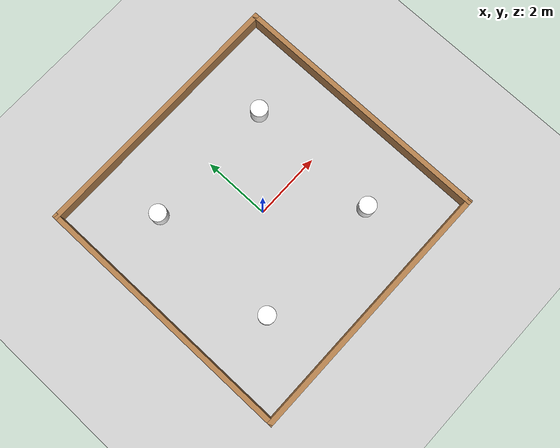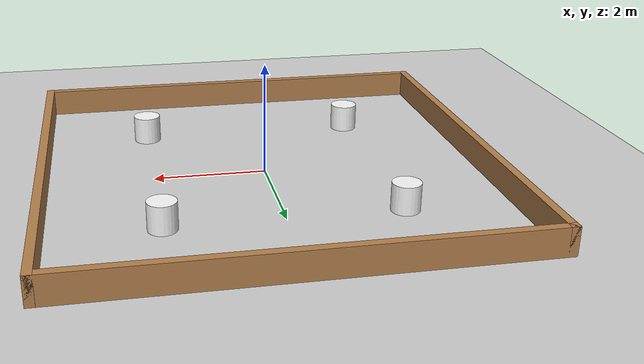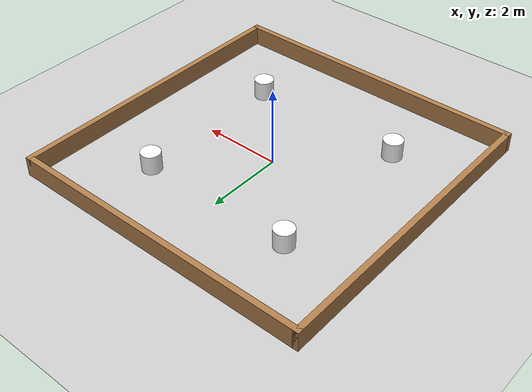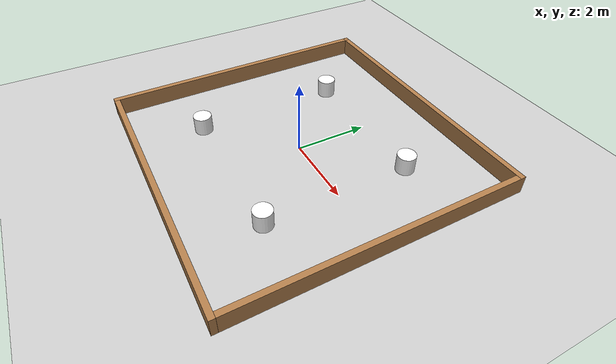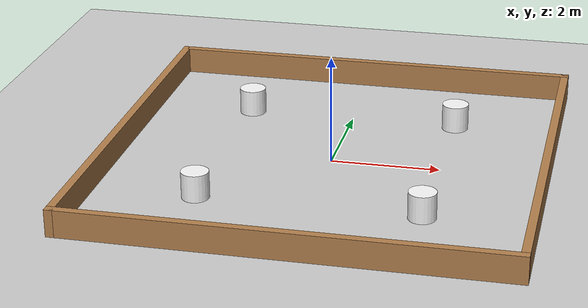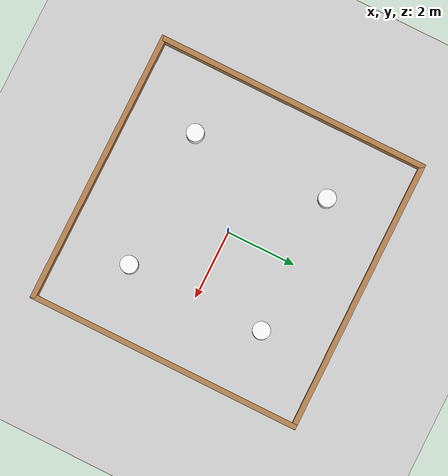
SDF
<sdf version="1.7">
 <world name="default">
  <light name="sun" type="directional">
   <pose>0 0 10 0 -0 0</pose>
   <diffuse>0.8 0.8 0.8 1</diffuse>
   <specular>0.2 0.2 0.2 1</specular>
   <attenuation>
    <range>1000</range>
    <constant>0.9</constant>
    <linear>0.01</linear>
    <quadratic>0.001</quadratic>
   </attenuation>
   <direction>-0.5 0.1 -0.9</direction>
   <spot><inner_angle>0</inner_angle><outer_angle>0</outer_angle><falloff>0</falloff></spot>
  </light>
  <model name="ground_plane">
   <static>1</static>
   <link name="link">
    <collision name="collision">
     <geometry><plane><normal>0 0 1</normal><size>100 100</size></plane></geometry>
     <surface>
      <contact><collide_bitmask>65535</collide_bitmask></contact>
      <friction><ode><mu>100</mu><mu2>50</mu2></ode></friction>
     </surface>
    </collision>
    <visual name="visual">
     <cast_shadows>0</cast_shadows>
     <geometry><plane><normal>0 0 1</normal><size>100 100</size></plane></geometry>
     <material>
      <script><uri>file://media/materials/scripts/gazebo.material</uri><name>Gazebo/Grey</name></script>
     </material>
    </visual>
   </link>
  </model>
  <gravity>0 0 -9.8</gravity>
  <magnetic_field>6e-06 2.3e-05 -4.2e-05</magnetic_field>
  <atmosphere type="adiabatic"/>
  <physics type="ode">
   <max_step_size>0.001</max_step_size>
   <real_time_factor>1</real_time_factor>
   <real_time_update_rate>1000</real_time_update_rate>
  </physics>
  <scene><ambient>0.4 0.4 0.4 1</ambient><background>0.7 0.7 0.7 1</background><shadows>1</shadows></scene>
  <audio><device>default</device></audio>
  <spherical_coordinates>
   <surface_model>EARTH_WGS84</surface_model>
   <latitude_deg>0</latitude_deg>
   <longitude_deg>0</longitude_deg>
   <elevation>0</elevation>
   <heading_deg>0</heading_deg>
  </spherical_coordinates>
  <model name="wall_8x8">
   <link name="Wall_0">
    <collision name="Wall_0_Collision">
     <geometry><box><size>8 0.15 0.5</size></box></geometry>
     <pose>0 0 0.25 0 -0 0</pose>
    </collision>
    <visual name="Wall_0_Visual">
     <pose>0 0 0.25 0 -0 0</pose>
     <geometry><box><size>8 0.15 0.5</size></box></geometry>
     <material>
      <script><uri>file://media/materials/scripts/gazebo.material</uri><name>Gazebo/Wood</name></script>
      <ambient>1 1 1 1</ambient>
     </material>
     <meta><layer>0</layer></meta>
    </visual>
    <pose>-3.925 -0 0 0 -0 1.5708</pose>
   </link>
   <link name="Wall_5">
    <collision name="Wall_5_Collision">
     <geometry><box><size>8 0.15 0.5</size></box></geometry>
     <pose>0 0 0.25 0 -0 0</pose>
    </collision>
    <visual name="Wall_5_Visual">
     <pose>0 0 0.25 0 -0 0</pose>
     <geometry><box><size>8 0.15 0.5</size></box></geometry>
     <material>
      <script><uri>file://media/materials/scripts/gazebo.material</uri><name>Gazebo/Wood</name></script>
      <ambient>1 1 1 1</ambient>
     </material>
     <meta><layer>0</layer></meta>
    </visual>
    <pose>-0 3.925 0 0 -0 0</pose>
   </link>
   <link name="Wall_6">
    <collision name="Wall_6_Collision">
     <geometry><box><size>8 0.15 0.5</size></box></geometry>
     <pose>0 0 0.25 0 -0 0</pose>
    </collision>
    <visual name="Wall_6_Visual">
     <pose>0 0 0.25 0 -0 0</pose>
     <geometry><box><size>8 0.15 0.5</size></box></geometry>
     <material>
      <script><uri>file://media/materials/scripts/gazebo.material</uri><name>Gazebo/Wood</name></script>
      <ambient>1 1 1 1</ambient>
     </material>
     <meta><layer>0</layer></meta>
    </visual>
    <pose>3.925 -0 0 0 -0 -1.5708</pose>
   </link>
   <link name="Wall_7">
    <collision name="Wall_7_Collision">
     <geometry><box><size>8 0.15 0.5</size></box></geometry>
     <pose>0 0 0.25 0 -0 0</pose>
    </collision>
    <visual name="Wall_7_Visual">
     <pose>0 0 0.25 0 -0 0</pose>
     <geometry><box><size>8 0.15 0.5</size></box></geometry>
     <material>
      <script><uri>file://media/materials/scripts/gazebo.material</uri><name>Gazebo/Wood</name></script>
      <ambient>1 1 1 1</ambient>
     </material>
     <meta><layer>0</layer></meta>
    </visual>
    <pose>-0 -3.925 0 0 -0 3.14159</pose>
   </link>
   <static>1</static>
  </model>
  <model name="moving_white_cylinder">
   <link name="link">
    <inertial>
     <mass>1</mass>
     <inertia><ixx>0.145833</ixx><ixy>0</ixy><ixz>0</ixz><iyy>0.145833</iyy><iyz>0</iyz><izz>0.125</izz></inertia>
    </inertial>
    <visual name="visual">
     <geometry><cylinder><radius>0.25</radius><length>0.5</length></cylinder></geometry>
     <material>
      <script><name>Gazebo/Pedestrian</name><uri>file://media/materials/scripts/gazebo.material</uri></script>
      <shader type="pixel"><normal_map>__default__</normal_map></shader>
      <ambient>0.98 0.98 0.98 1</ambient>
      <diffuse>0.976 0.976 0.976 1</diffuse>
      <specular>0.976 0.976 0.976 1</specular>
      <emissive>0.976 0.976 0.976 1</emissive>
     </material>
     <pose>0 0 -0.25 0 -0 0</pose>
    </visual>
    <collision name="collision">
     <pose>0 0 -0.25 0 -0 0</pose>
     <geometry><cylinder><radius>0.25</radius><length>0.5</length></cylinder></geometry>
     <surface>
      <friction>
       <ode><mu>1</mu><mu2>1</mu2><fdir1>0 0 0</fdir1><slip1>0</slip1><slip2>0</slip2></ode>
       <torsional>
        <coefficient>1</coefficient>
        <patch_radius>0</patch_radius>
        <surface_radius>0</surface_radius>
        <use_patch_radius>1</use_patch_radius>
        <ode><slip>0</slip></ode>
       </torsional>
      </friction>
      <bounce><restitution_coefficient>0</restitution_coefficient><threshold>1e+06</threshold></bounce>
      <contact>
       <collide_without_contact>0</collide_without_contact>
       <collide_without_contact_bitmask>1</collide_without_contact_bitmask>
       <collide_bitmask>1</collide_bitmask>
       <ode>
        <soft_cfm>0</soft_cfm>
        <soft_erp>0.2</soft_erp>
        <kp>1e+13</kp>
        <kd>1</kd>
        <max_vel>0.01</max_vel>
        <min_depth>0</min_depth>
       </ode>
       <bullet>
        <split_impulse>1</split_impulse>
        <split_impulse_penetration_threshold>-0.01</split_impulse_penetration_threshold>
        <soft_cfm>0</soft_cfm>
        <soft_erp>0.2</soft_erp>
        <kp>1e+13</kp>
        <kd>1</kd>
       </bullet>
      </contact>
     </surface>
    </collision>
   </link>
   <static>0</static>
   <pose>2 2 0.499992 1e-06 -1e-06 -1e-06</pose>
   <plugin name="dyn_obst_plugin" filename="libdyn_obst_plugin.so">
    <axis>x</axis>
    <angle>45.0</angle>
    <amplitude>1.6</amplitude>
    <frequency>0.5</frequency>
   </plugin>
  </model>
  <model name="moving_white_cylinder_0">
   <link name="link">
    <inertial>
     <mass>1</mass>
     <inertia><ixx>0.145833</ixx><ixy>0</ixy><ixz>0</ixz><iyy>0.145833</iyy><iyz>0</iyz><izz>0.125</izz></inertia>
    </inertial>
    <visual name="visual">
     <geometry><cylinder><radius>0.25</radius><length>0.5</length></cylinder></geometry>
     <material>
      <script><name>Gazebo/Pedestrian</name><uri>file://media/materials/scripts/gazebo.material</uri></script>
      <shader type="pixel"><normal_map>__default__</normal_map></shader>
      <ambient>0.98 0.98 0.98 1</ambient>
      <diffuse>0.976 0.976 0.976 1</diffuse>
      <specular>0.976 0.976 0.976 1</specular>
      <emissive>0.976 0.976 0.976 1</emissive>
     </material>
     <pose>0 0 -0.25 0 -0 0</pose>
    </visual>
    <collision name="collision">
     <pose>0 0 -0.25 0 -0 0</pose>
     <geometry><cylinder><radius>0.25</radius><length>0.5</length></cylinder></geometry>
     <surface>
      <friction>
       <ode><mu>1</mu><mu2>1</mu2><fdir1>0 0 0</fdir1><slip1>0</slip1><slip2>0</slip2></ode>
       <torsional>
        <coefficient>1</coefficient>
        <patch_radius>0</patch_radius>
        <surface_radius>0</surface_radius>
        <use_patch_radius>1</use_patch_radius>
        <ode><slip>0</slip></ode>
       </torsional>
      </friction>
      <bounce><restitution_coefficient>0</restitution_coefficient><threshold>1e+06</threshold></bounce>
      <contact>
       <collide_without_contact>0</collide_without_contact>
       <collide_without_contact_bitmask>1</collide_without_contact_bitmask>
       <collide_bitmask>1</collide_bitmask>
       <ode>
        <soft_cfm>0</soft_cfm>
        <soft_erp>0.2</soft_erp>
        <kp>1e+13</kp>
        <kd>1</kd>
        <max_vel>0.01</max_vel>
        <min_depth>0</min_depth>
       </ode>
       <bullet>
        <split_impulse>1</split_impulse>
        <split_impulse_penetration_threshold>-0.01</split_impulse_penetration_threshold>
        <soft_cfm>0</soft_cfm>
        <soft_erp>0.2</soft_erp>
        <kp>1e+13</kp>
        <kd>1</kd>
       </bullet>
      </contact>
     </surface>
    </collision>
   </link>
   <static>0</static>
   <pose>-2 2 0.499998 -1e-06 1e-06 -1e-06</pose>
   <plugin name="dyn_obst_plugin" filename="libdyn_obst_plugin.so">
    <axis>y</axis>
    <amplitude>1.6</amplitude>
    <frequency>-0.5</frequency>
   </plugin>
  </model>
  <model name="moving_white_cylinder_1">
   <link name="link">
    <inertial>
     <mass>1</mass>
     <inertia><ixx>0.145833</ixx><ixy>0</ixy><ixz>0</ixz><iyy>0.145833</iyy><iyz>0</iyz><izz>0.125</izz></inertia>
    </inertial>
    <visual name="visual">
     <geometry><cylinder><radius>0.25</radius><length>0.5</length></cylinder></geometry>
     <material>
      <script><name>Gazebo/Pedestrian</name><uri>file://media/materials/scripts/gazebo.material</uri></script>
      <shader type="pixel"><normal_map>__default__</normal_map></shader>
      <ambient>0.98 0.98 0.98 1</ambient>
      <diffuse>0.976 0.976 0.976 1</diffuse>
      <specular>0.976 0.976 0.976 1</specular>
      <emissive>0.976 0.976 0.976 1</emissive>
     </material>
     <pose>0 0 -0.25 0 -0 0</pose>
    </visual>
    <collision name="collision">
     <pose>0 0 -0.25 0 -0 0</pose>
     <geometry><cylinder><radius>0.25</radius><length>0.5</length></cylinder></geometry>
     <surface>
      <friction>
       <ode><mu>1</mu><mu2>1</mu2><fdir1>0 0 0</fdir1><slip1>0</slip1><slip2>0</slip2></ode>
       <torsional>
        <coefficient>1</coefficient>
        <patch_radius>0</patch_radius>
        <surface_radius>0</surface_radius>
        <use_patch_radius>1</use_patch_radius>
        <ode><slip>0</slip></ode>
       </torsional>
      </friction>
      <bounce><restitution_coefficient>0</restitution_coefficient><threshold>1e+06</threshold></bounce>
      <contact>
       <collide_without_contact>0</collide_without_contact>
       <collide_without_contact_bitmask>1</collide_without_contact_bitmask>
       <collide_bitmask>1</collide_bitmask>
       <ode>
        <soft_cfm>0</soft_cfm>
        <soft_erp>0.2</soft_erp>
        <kp>1e+13</kp>
        <kd>1</kd>
        <max_vel>0.01</max_vel>
        <min_depth>0</min_depth>
       </ode>
       <bullet>
        <split_impulse>1</split_impulse>
        <split_impulse_penetration_threshold>-0.01</split_impulse_penetration_threshold>
        <soft_cfm>0</soft_cfm>
        <soft_erp>0.2</soft_erp>
        <kp>1e+13</kp>
        <kd>1</kd>
       </bullet>
      </contact>
     </surface>
    </collision>
   </link>
   <static>0</static>
   <pose>-2 -2 0.499999 -1e-06 1e-06 0</pose>
   <plugin name="dyn_obst_plugin" filename="libdyn_obst_plugin.so">
    <axis>x</axis>
    <amplitude>1.6</amplitude>
    <frequency>0.5</frequency>
   </plugin>
  </model>
  <model name="moving_white_cylinder_2">
   <link name="link">
    <inertial>
     <mass>1</mass>
     <inertia><ixx>0.145833</ixx><ixy>0</ixy><ixz>0</ixz><iyy>0.145833</iyy><iyz>0</iyz><izz>0.125</izz></inertia>
    </inertial>
    <visual name="visual">
     <geometry><cylinder><radius>0.25</radius><length>0.5</length></cylinder></geometry>
     <material>
      <script><name>Gazebo/Pedestrian</name><uri>file://media/materials/scripts/gazebo.material</uri></script>
      <shader type="pixel"><normal_map>__default__</normal_map></shader>
      <ambient>0.98 0.98 0.98 1</ambient>
      <diffuse>0.976 0.976 0.976 1</diffuse>
      <specular>0.976 0.976 0.976 1</specular>
      <emissive>0.976 0.976 0.976 1</emissive>
     </material>
     <pose>0 0 -0.25 0 -0 0</pose>
    </visual>
    <collision name="collision">
     <pose>0 0 -0.25 0 -0 0</pose>
     <geometry><cylinder><radius>0.25</radius><length>0.5</length></cylinder></geometry>
     <surface>
      <friction>
       <ode><mu>1</mu><mu2>1</mu2><fdir1>0 0 0</fdir1><slip1>0</slip1><slip2>0</slip2></ode>
       <torsional>
        <coefficient>1</coefficient>
        <patch_radius>0</patch_radius>
        <surface_radius>0</surface_radius>
        <use_patch_radius>1</use_patch_radius>
        <ode><slip>0</slip></ode>
       </torsional>
      </friction>
      <bounce><restitution_coefficient>0</restitution_coefficient><threshold>1e+06</threshold></bounce>
      <contact>
       <collide_without_contact>0</collide_without_contact>
       <collide_without_contact_bitmask>1</collide_without_contact_bitmask>
       <collide_bitmask>1</collide_bitmask>
       <ode>
        <soft_cfm>0</soft_cfm>
        <soft_erp>0.2</soft_erp>
        <kp>1e+13</kp>
        <kd>1</kd>
        <max_vel>0.01</max_vel>
        <min_depth>0</min_depth>
       </ode>
       <bullet>
        <split_impulse>1</split_impulse>
        <split_impulse_penetration_threshold>-0.01</split_impulse_penetration_threshold>
        <soft_cfm>0</soft_cfm>
        <soft_erp>0.2</soft_erp>
        <kp>1e+13</kp>
        <kd>1</kd>
       </bullet>
      </contact>
     </surface>
    </collision>
   </link>
   <static>0</static>
   <pose>2 -2 0.499992 -1e-06 1e-06 -1e-06</pose>
   <plugin name="dyn_obst_plugin" filename="libdyn_obst_plugin.so">
    <axis>y</axis>
    <amplitude>1.6</amplitude>
    <frequency>-0.75</frequency>
   </plugin>
  </model>
 </world>
</sdf>
